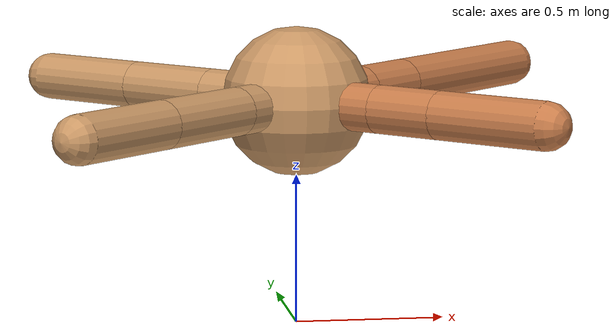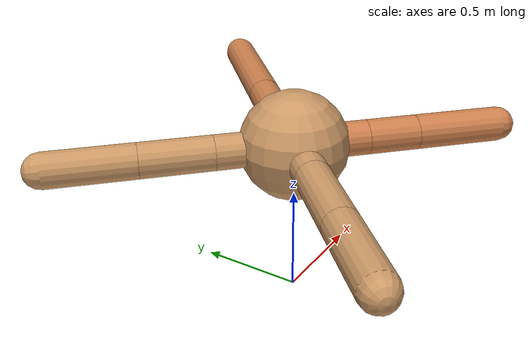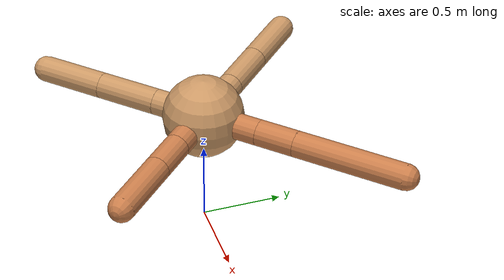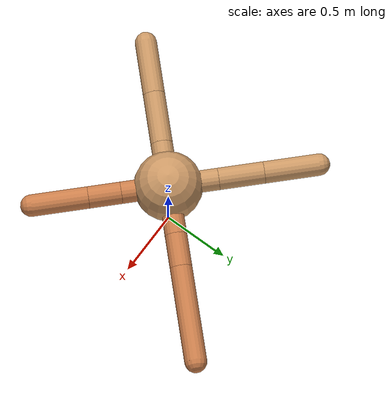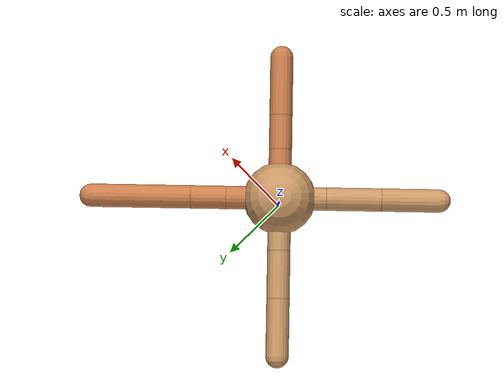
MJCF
<mujoco model="ant">
  <compiler angle="degree" coordinate="local" inertiafromgeom="true" />
  <option integrator="RK4" timestep="0.01" />
  <custom>
    <numeric data="0.0 0.0 0.55 1.0 0.0 0.0 0.0 0.0 1.0 0.0 -1.0 0.0 -1.0 0.0 1.0" name="init_qpos" />
  </custom>
  <default>
    <joint armature="1" damping="1" limited="true" />
    <geom conaffinity="0" condim="3" density="5.0" friction="1.5 0.1 0.1" margin="0.01" rgba="0.8 0.6 0.4 1" />
  </default>
  <worldbody>
    <body name="torso" pos="0 0 0.75">
      <geom name="torso_geom" pos="0 0 0" size="0.25" type="sphere" />

      <body name="front_left_leg" pos="0 0 0">
        <geom fromto="0.0 0.0 0.0 0.26178107217520824 0.26178107217520824 0.0" name="aux_1_geom" size="0.08" type="capsule" rgba=".8 .5 .3 1" />
        <body name="aux_1" pos="0.26178107217520824 0.26178107217520824 0.0">
          <joint axis="0 0 1" name="hip_1" pos="0.0 0.0 0.0" range="-40 40" type="hinge" />
          <geom fromto="0.0 0.0 0.0 0.17158366399501074 0.17158366399501074 0.0" name="left_leg_geom" size="0.08" type="capsule" rgba=".8 .5 .3 1" />
          <body pos="0.17158366399501074 0.17158366399501074 0.0" name="front_left_foot">
            <joint axis="-1 1 0" name="ankle_1" pos="0.0 0.0 0.0" range="30 100" type="hinge" />
            <geom fromto="0.0 0.0 0.0 0.4877306919107383 0.4877306919107383 0.0" name="left_ankle_geom" size="0.08" type="capsule" rgba=".8 .5 .3 1" />
          </body>
        </body>
      </body>
      <body name="front_right_leg" pos="0 0 0">
        <geom fromto="0.0 0.0 0.0 -0.25471440767549364 0.25471440767549364 0.0" name="aux_2_geom" size="0.08" type="capsule" />
        <body name="aux_2" pos="-0.25471440767549364 0.25471440767549364 0.0">
          <joint axis="0 0 1" name="hip_2" pos="0.0 0.0 0.0" range="-40 40" type="hinge" />
          <geom fromto="0.0 0.0 0.0 -0.232751491313904 0.232751491313904 0.0" name="right_leg_geom" size="0.08" type="capsule" />
          <body pos="-0.232751491313904 0.232751491313904 0.0" name="front_right_foot">
            <joint axis="1 1 0" name="ankle_2" pos="0.0 0.0 0.0" range="-100 -30" type="hinge" />
            <geom fromto="0.0 0.0 0.0 -0.2818871722486907 0.2818871722486907 0.0" name="right_ankle_geom" size="0.08" type="capsule" />
          </body>
        </body>
      </body>
      <body name="left_back_leg" pos="0 0 0">
        <geom fromto="0.0 0.0 0.0 -0.22645953391276186 -0.22645953391276186 0.0" name="aux_3_geom" size="0.08" type="capsule" />
        <body name="aux_3" pos="-0.22645953391276186 -0.22645953391276186 0.0">
          <joint axis="0 0 1" name="hip_3" pos="0.0 0.0 0.0" range="-40 40" type="hinge" />
          <geom fromto="0.0 0.0 0.0 -0.26836189476651573 -0.26836189476651573 0.0" name="back_leg_geom" size="0.08" type="capsule" />
          <body pos="-0.26836189476651573 -0.26836189476651573 0.0" name="left_back_foot">
            <joint axis="-1 1 0" name="ankle_3" pos="0.0 0.0 0.0" range="-100 -30" type="hinge" />
            <geom fromto="0.0 0.0 0.0 -0.2849096811122464 -0.2849096811122464 0.0" name="third_ankle_geom" size="0.08" type="capsule" />
          </body>
        </body>
      </body>
      <body name="right_back_leg" pos="0 0 0">
        <geom fromto="0.0 0.0 0.0 0.23952266309497366 -0.23952266309497366 0.0" name="aux_4_geom" size="0.08" type="capsule" rgba=".8 .5 .3 1" />
        <body name="aux_4" pos="0.23952266309497366 -0.23952266309497366 0.0">
          <joint axis="0 0 1" name="hip_4" pos="0.0 0.0 0.0" range="-40 40" type="hinge" />
          <geom fromto="0.0 0.0 0.0 0.16749339912022412 -0.16749339912022412 0.0" name="rightback_leg_geom" size="0.08" type="capsule" rgba=".8 .5 .3 1" />
          <body pos="0.16749339912022412 -0.16749339912022412 0.0" name="right_back_foot">
            <joint axis="1 1 0" name="ankle_4" pos="0.0 0.0 0.0" range="30 100" type="hinge" />
            <geom fromto="0.0 0.0 0.0 0.2883641068440486 -0.2883641068440486 0.0" name="fourth_ankle_geom" size="0.08" type="capsule" rgba=".8 .5 .3 1" />
          </body>
        </body>
      </body>
    </body>
  </worldbody>
  <actuator>
    <motor ctrllimited="true" ctrlrange="-1.0 1.0" joint="hip_4" gear="150" />
    <motor ctrllimited="true" ctrlrange="-1.0 1.0" joint="ankle_4" gear="150" />
    <motor ctrllimited="true" ctrlrange="-1.0 1.0" joint="hip_1" gear="150" />
    <motor ctrllimited="true" ctrlrange="-1.0 1.0" joint="ankle_1" gear="150" />
    <motor ctrllimited="true" ctrlrange="-1.0 1.0" joint="hip_2" gear="150" />
    <motor ctrllimited="true" ctrlrange="-1.0 1.0" joint="ankle_2" gear="150" />
    <motor ctrllimited="true" ctrlrange="-1.0 1.0" joint="hip_3" gear="150" />
    <motor ctrllimited="true" ctrlrange="-1.0 1.0" joint="ankle_3" gear="150" />
  </actuator>
</mujoco>
